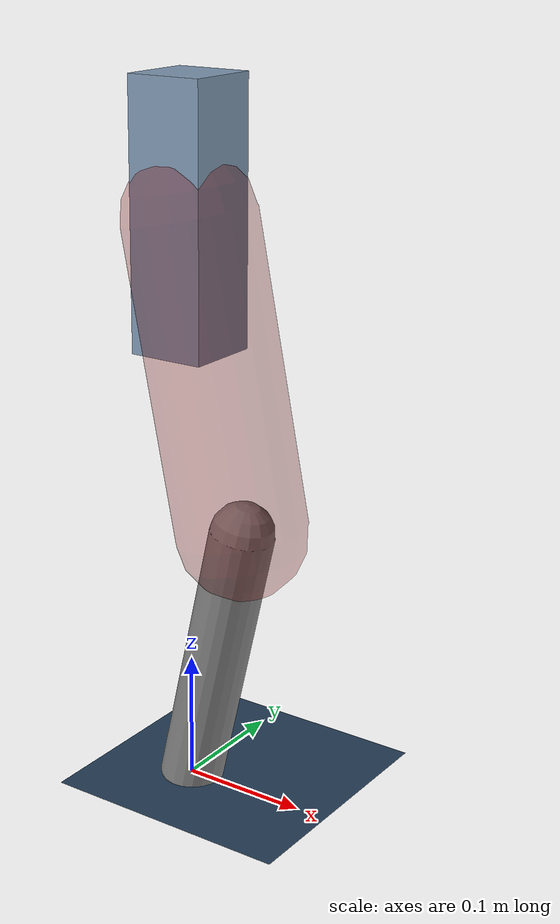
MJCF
<mujoco model="Hopper2D">
	<compiler inertiafromgeom="true" angle="radian" />
	<option timestep="0.001" integrator="implicit" cone="elliptic" solver="Newton" tolerance="1e-10" />

	<default>
		<geom contype="1" conaffinity="1" condim="3" friction="2 0.005 0.0001" solref="0.005 1" />
		<joint limited="true" damping="0.1" />
	</default>

	<asset>
		<texture name="skybox" type="skybox" builtin="gradient" rgb1=".4 .6 .8" rgb2="0 0 0" width="800" height="800" />
		<texture name="grid" type="2d" builtin="checker" rgb1=".1 .2 .3" rgb2=".2 .3 .4" width="300" height="300" mark="edge" markrgb=".2 .3 .4" />
		<material name="ground" texture="grid" texrepeat="1 1" texuniform="true" reflectance="0.1" />
		<material name="leg" rgba="0.5 0.6 0.7 1" />
	</asset>

	<worldbody>

		<geom name="floor" type="plane" size="5 5 0.25" material="ground" />

		<light directional="false" diffuse="0.8 0.8 0.8" specular="0.3 0.3 0.3" pos="0 0 2" dir="0 0 -1" />
		<light mode="targetbodycom" target="base" directional="false" diffuse="0.8 0.8 0.8" specular="0.3 0.3 0.3" pos="0 0 2" dir="0 0 -1" />

		<camera name="fixed" pos="0 -2 1" xyaxes="1 0 0 0 0 1" />
		<camera name="tracking" mode="trackcom" pos="0 -3 1" />

		<body name="root" pos="0 0 0.4481445511488903">
			<joint name="slide_x" type="slide" axis="1 0 0" range="-100 100" />
			<joint name="slide_z" type="slide" axis="0 0 1" range="0 10" />

			<body name="base" pos="0 0 0">
				<geom name="torso" type="box" size="0.03 0.03 0.1" mass="3.252" material="leg" />

				<body name="link1" pos="0 0 0" euler="0 1.3692172755854697 0">
					<joint type="hinge" axis="0 -1 0" pos="0 0 0" name="hinge1" limited="true" range="-3.14 3.14" stiffness="0" damping="0.1" />
					<geom name="thigh" type="capsule" fromto="0 0 0 0.23756949789963822 0 0" size="0.05" rgba="0.5 0 0 0.3" mass="0.8243806945390594" />

					<body name="link2" pos="0.23756949789963822 0 0" euler="0 0.41892888338889556 0">
						<joint type="hinge" axis="0 -1 0" pos="0 0 0" name="hinge2" limited="true" range="-3.14 3.14" stiffness="0" damping="0.1" />
						<geom name="shank" type="capsule" fromto="0 0 0 0.2205750532492521 0 0" size="0.025" mass="0.4181600425994017" />

					</body>
				</body>
			</body>
		</body>
	</worldbody>

	<actuator>
		<motor name="torque1" joint="hinge1" ctrlrange="-111.78544078389861 111.78544078389861" ctrllimited="true" gear="1" />
		<motor name="torque2" joint="hinge2" ctrlrange="-86.97818480021888 86.97818480021888" ctrllimited="true" gear="1" />
	</actuator>
</mujoco>
